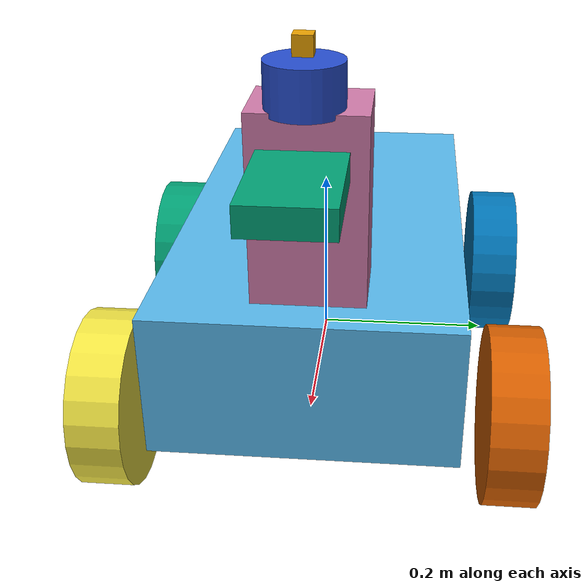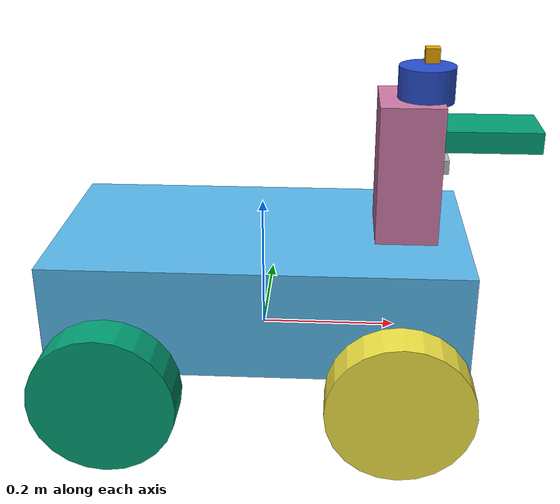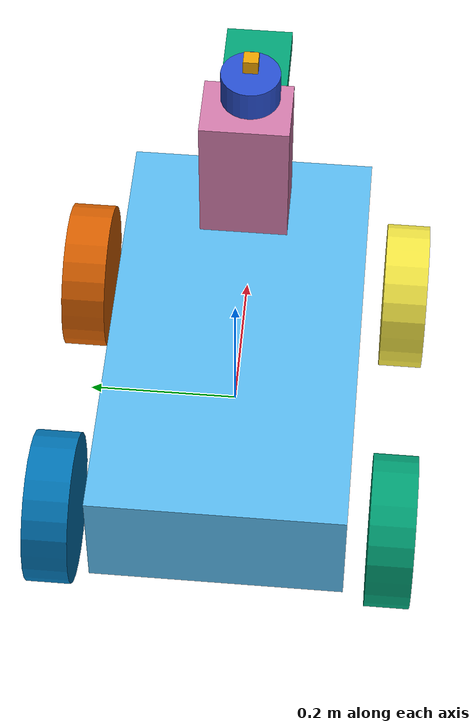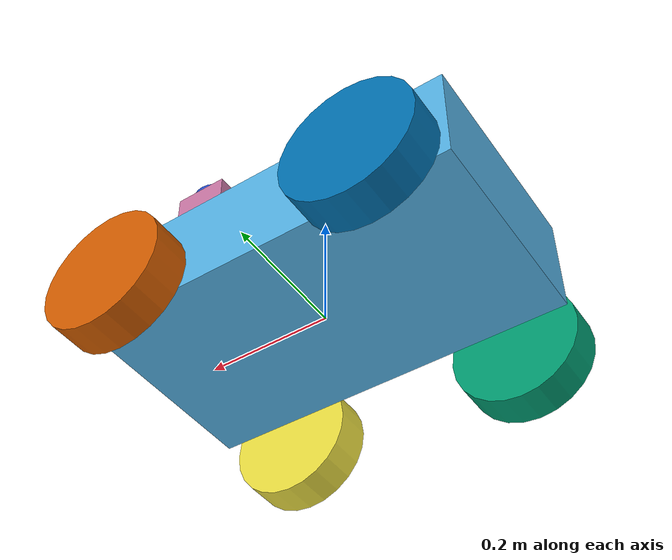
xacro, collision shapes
<?xml version="1.0"?>
<robot name="mickrobot" xmlns:xacro="http://ros.org/wiki/xacro">

  <link name="base_footprint">
    <visual>
      <geometry>
        <sphere radius="0.001" />
      </geometry>
      <material name="invisible">
        <color rgba="0 0 0 0"/>
      </material>
    </visual>
  </link>

<joint name="base_joint" type="fixed">
  <parent link="base_footprint"/>
  <child link="base_link"/>
  <origin xyz="0.0 0.0 0.0" rpy="0 0 0"/>
</joint>

  <!-- base -->
 <link name="base_link">
    <visual>
      <origin xyz="-0.3 -0.1665 0.0" rpy="0 0 0"/>
      <geometry>
        <mesh filename="file://$(find mickrobot_description)/urdf/mesh/mickx4_body.STL" scale="0.001 0.001 0.001"/>
      </geometry>
    </visual>

    <collision>
      <origin xyz="0.0 0.0 0.08" rpy="0 0 0"/>
      <geometry>
        <box size="0.6 0.333 0.16"/>
      </geometry>
    </collision>

   <inertial>
      <mass value="25"/>
      <origin xyz="0.0 0.0 0.08" rpy="0 0 0"/>
      <inertia
        ixx="0.284" ixy="0" ixz="0"
        iyy="0.803" iyz="0"
        izz="0.981"/>
    </inertial>
  </link>

  <!-- right_back_wheel -->
  <link   name="right_back_wheel">
    <visual>
      <origin xyz="0.12 0 -0.11" rpy="0 0 1.57079"/>
      <geometry>
        <mesh filename="file://$(find mickrobot_description)/urdf/mesh/mickx4_wheel_8inches_2.STL" scale="0.001 0.001 0.001"/>
      </geometry>
    </visual>

    <collision>
      <origin xyz="0 0.035 0" rpy="0 1.57079 -1.57079"/>
      <geometry>
        <cylinder radius="0.1016" length="0.06"/>
      </geometry>
    </collision>

    <inertial>
      <mass value="1"/>
      <origin xyz="-0 0.035 0" rpy="0 1.57079 -1.57079"/>
      <inertia ixx="0.00288" ixy="0.0" ixz="0.0" iyy="0.00288" iyz="0.0" izz="0.00516"/>
    </inertial>
  </link>
聽
  <joint   name="right_back_wheel_joint" type="continuous">
    <axis xyz="0 1 0"/>
    <parent   link="base_link"/>
    <child   link="right_back_wheel"/>
    <origin   xyz="-0.2 -0.26 0.0"/>
    <limit effort="100"   velocity="100"/>
  </joint>
  <!-- right_front_wheel -->

  <link   name="right_front_wheel">
    <visual>
      <origin xyz="0.12 0 -0.11" rpy="0 0 1.57079"/>
      <geometry>
        <mesh filename="file://$(find mickrobot_description)/urdf/mesh/mickx4_wheel_8inches_2.STL" scale="0.001 0.001 0.001"/>
      </geometry>
    </visual>

    <collision>
      <origin xyz="-0 0.035 0" rpy="0 1.57079 -1.57079"/>
      <geometry>
        <cylinder radius="0.1016" length="0.06"/>
      </geometry>
    </collision>

    <inertial>
      <mass value="1"/>
      <origin xyz="-0 0.035 0" rpy="0 1.57079 -1.57079"/>
      <inertia ixx="0.00288" ixy="0.0" ixz="0.0" iyy="0.00288" iyz="0.0" izz="0.00516"/>
    </inertial>
  </link>
聽
  <joint   name="right_front_wheel_joint" type="continuous">
    <axis xyz="0 1 0"/>
    <parent   link="base_link"/>
    <child   link="right_front_wheel"/>
    <origin   xyz="0.2 -0.26 0.0"/>
    <limit effort="100"   velocity="100"/>
  </joint>

  <!-- left_back_wheel -->
  <link   name="left_back_wheel">
    <visual>
      <origin xyz="-0.12 0 -0.11" rpy="0 0 -1.57079"/>
      <geometry>
        <mesh filename="file://$(find mickrobot_description)/urdf/mesh/mickx4_wheel_8inches_2.STL" scale="0.001 0.001 0.001"/>
      </geometry>
    </visual>

    <collision>
      <origin xyz="0 -0.035 0" rpy="0 1.57079 -1.57079"/>
      <geometry>
        <cylinder radius="0.1016" length="0.06"/>
      </geometry>
    </collision>

    <inertial>
      <mass value="1"/>
      <origin xyz="0 -0.035 0" rpy="0 1.57079 -1.57079"/>
      <inertia ixx="0.00288" ixy="0.0" ixz="0.0" iyy="0.00288" iyz="0.0" izz="0.00516"/>
    </inertial>
  </link>
聽
  <joint   name="left_back_wheel_joint" type="continuous">
    <axis xyz="0 1 0"/>
    <parent   link="base_link"/>
    <child   link="left_back_wheel"/>
    <origin   xyz="-0.2 0.26 0.0"/>
    <limit effort="100"   velocity="100"/>
  </joint>

  <!-- left_front_wheel -->
  <link   name="left_front_wheel">
    <visual>
      <origin xyz="-0.12 0 -0.11" rpy="0 0 -1.57079"/>
      <geometry>
        <mesh filename="file://$(find mickrobot_description)/urdf/mesh/mickx4_wheel_8inches_2.STL" scale="0.001 0.001 0.001"/>
      </geometry>
    </visual>

    <collision>
      <origin xyz="0 -0.035 0" rpy="0 1.57079 -1.57079"/>
      <geometry>
        <cylinder radius="0.1016" length="0.06"/>
      </geometry>
    </collision>

    <inertial>
      <mass value="1"/>
      <origin xyz="0 -0.035 0" rpy="0 1.57079 -1.57079"/>
      <inertia ixx="0.00288" ixy="0.0" ixz="0.0" iyy="0.00288" iyz="0.0" izz="0.00516"/>
    </inertial>
  </link>
聽
  <joint   name="left_front_wheel_joint" type="continuous">
    <axis xyz="0 1 0"/>
    <parent   link="base_link"/>
    <child   link="left_front_wheel"/>
    <origin   xyz="0.2 0.26 0.0"/>
    <limit effort="100"   velocity="100"/>
  </joint>

  <!-- sensor -->
  <link   name="sensor_link">
    <visual>
      <origin xyz="0 0 0" rpy="0 0 0"/>
      <geometry>
        <mesh filename="file://$(find mickrobot_description)/urdf/mesh/mickx4_sensorkit1.STL" scale="0.001 0.001 0.001"/>
      </geometry>
    </visual>

    <collision>
      <origin xyz="0.12 0.12 0.1" rpy="0 0 0 "/>
      <geometry>
        <box size="0.09 0.12 0.20"/>
      </geometry>
    </collision>

    <inertial>
      <mass value="1"/>
      <origin xyz="0.12 0.12 0.05" rpy="0 0 0"/>
      <inertia ixx="0.00333" ixy="0.0" ixz="0.0" iyy="0.00333" iyz="0.0" izz="0.00240"/>
    </inertial>
  </link>
聽
  <joint   name="sensor_joint" type="fixed">
    <parent   link="base_link"/>
    <child   link="sensor_link"/>
    <origin   xyz="0.09 -0.1165 0.16"/>
  </joint>

  <!-- imu -->
   <link name="imu_link">
    <visual>
    <origin xyz="0 0 0.0" rpy="0 0 0"/>
    <geometry>
          <box size="0.07 0.07 0.02"/>
    </geometry>
  </visual>

  <collision>
    <origin xyz="0.0 0.0 0.0" rpy="0.0 0.0 0.0"/>
    <geometry>
      <box size="0.07 0.07 0.02"/>
    </geometry>
  </collision>

    <inertial>
      <origin xyz="0.0 0.0 0.0" rpy="0.0 0.0 0.0"/>
      <mass value="0.5"/>
      <inertia ixx="3.333e-5" ixy="0.0" ixz="0.0" iyy="3.333e-5" iyz="0.0" izz="3.333e-5"/>
    </inertial>
    </link>

  <joint name="imu_joint" type="fixed">
    <parent link="base_link" />
    <child link="imu_link" />
    <origin xyz="0.23 0.0 0.27" rpy="0.0 0.0 0.0" />
  </joint>

  <!-- gnss -->
  <link name="gnss_link">
    <visual>
      <origin xyz="0 0 0.0" rpy="0 0 0"/>
      <geometry>
        <box size="0.02 0.02 0.02"/>
      </geometry>
    </visual>

    <collision>
      <origin xyz="0.0 0.0 0.0" rpy="0.0 0.0 0.0"/>
      <geometry>
        <box size="0.02 0.02 0.02"/>
      </geometry>
    </collision>

    <inertial>
      <origin xyz="0.0 0.0 0.0" rpy="0.0 0.0 0.0"/>
      <mass value="0.5"/>
      <inertia ixx="3.333e-5" ixy="0.0" ixz="0.0" iyy="3.333e-5" iyz="0.0" izz="3.333e-5"/>
    </inertial>
  </link>

  <joint name="gnss_joint" type="fixed">
    <parent link="base_link" />
    <child link="gnss_link" />
    <origin xyz="0.235 0.0 0.42" rpy="0.0 0.0 0.0" />
  </joint>

  <!-- laser -->
  <link name="laser_link">
    <visual>
      <origin xyz="0 0 0" rpy="0 0 0"/>
      <geometry>
        <cylinder length="0.05" radius="0.04"/>
      </geometry>
    </visual>

    <collision>
      <origin xyz="0 0 0" rpy="0 0 0"/>
      <geometry>
        <cylinder length="0.05" radius="0.04"/>
      </geometry>
    </collision>

    <inertial>
      <mass value="0.1"/>
      <inertia ixx="6.083e-5" ixy="0" ixz="0" iyy="6.083e-5" iyz="0" izz="8.0e-5"/>
    </inertial>
  </link>

  <joint name="laser_joint" type="fixed">
      <parent link="base_link" />
      <child link="laser_link" />
      <origin xyz="0.23 0.0 0.38" />
  </joint>

  <!-- camera -->
 <link name="camera_link">
    <visual>
      <origin xyz="0 0 0" rpy="0 0 0"/>
      <geometry>
        <box size="0.02 0.09 0.03"/>
      </geometry>
    </visual>

  <inertial>
  <mass value="0.1"/>
  <origin xyz="0 0 0" rpy="0 0 0"/>
  <inertia
    ixx="4.167e-5" ixy="0" ixz="0"
    iyy="4.167e-5" iyz="0"
    izz="4.167e-5"
  />
  </inertial>

   <collision>
      <origin xyz="0 0 0" rpy="0 0 0"/>
      <geometry>
        <box size="0.2 0.09 0.03"/>
      </geometry>
    </collision>
  </link>

  <joint name="camera_joint" type="fixed">
    <parent link="base_link"/>
    <child link="camera_link"/>
    <origin xyz="0.29 0.0 0.31" rpy="0 0 0"/>
  </joint>

  <!-- diff_drive_plugin for gz-sim -->

<gazebo reference="left_front_wheel">
  <mu1>1.8</mu1> <!-- 闈欐懇鎿︾郴鏁?-->
  <mu2>4.0</mu2> <!-- 鍔ㄦ懇鎿︾郴鏁?-->
</gazebo>

<gazebo reference="right_front_wheel">
  <mu1>1.8</mu1>
  <mu2>4.0</mu2>
</gazebo>

<gazebo reference="left_back_wheel">
  <mu1>1.8</mu1>
  <mu2>4.0</mu2>
</gazebo>

<gazebo reference="right_back_wheel">
  <mu1>1.8</mu1>
  <mu2>4.0</mu2>
</gazebo>

  <gazebo>
    <plugin filename="gz-sim-diff-drive-system" name="gz::sim::systems::DiffDrive">
      <!-- 宸﹀彸渚ц疆鐨勭粦瀹?-->
      <left_joint>left_front_wheel_joint</left_joint>
      <left_joint>left_back_wheel_joint</left_joint>
      <right_joint>right_front_wheel_joint</right_joint>
      <right_joint>right_back_wheel_joint</right_joint>

      <!-- Kinematics -->
      <wheel_separation>0.40</wheel_separation>
      <wheel_radius>0.1016</wheel_radius>

      <!-- limits -->
      <max_linear_acceleration>5.0</max_linear_acceleration>
      <max_angular_acceleration>5.0</max_angular_acceleration>

      <!-- topic -->
      <topic>cmd_vel</topic>

      <!-- output -->
      <odom_topic>odom</odom_topic>
      <tf_topic>tf</tf_topic>
      <frame_id>odom</frame_id>
      <child_frame_id>base_footprint</child_frame_id>
      <odom_publish_frequency>30</odom_publish_frequency>
    </plugin>

    <!-- Publish joint states -->
    <plugin filename="gz-sim-joint-state-publisher-system" name="gz::sim::systems::JointStatePublisher">
      <topic>joint_states</topic>
    </plugin>
  </gazebo>

  <!-- imu_plugin -->
  <gazebo reference="imu_link">
    <sensor name="imu_sensor" type="imu">
      <always_on>true</always_on>
      <update_rate>30</update_rate>
      <visualize>true</visualize>
      <topic>imu/data</topic>
    </sensor>
  </gazebo>

  <!-- camera_plugin -->
  <gazebo reference="camera_link">
    <sensor name="camera_sensor" type="camera">
      <always_on>true</always_on>
      <update_rate>30</update_rate>
      <visualize>true</visualize>
      <topic>camera/image_raw</topic>
      <camera>
        <horizontal_fov>1.047</horizontal_fov>
        <image>
          <width>640</width>
          <height>480</height>
          <format>R8G8B8</format>
        </image>
        <clip>
          <near>0.1</near>
          <far>100</far>
        </clip>
      </camera>
    </sensor>
  </gazebo>

  <!-- gnss_plugin -->
  <gazebo reference="gnss_link">
    <sensor name="gnss_sensor" type="navsat">
      <always_on>true</always_on>
      <update_rate>5.0</update_rate>
      <topic>gps/fix</topic>
    </sensor>
  </gazebo>

  <!-- laser_plugin -->
  <gazebo reference="laser_link">
    <material>Gazebo/Blue</material>
    <sensor name="lidar" type="gpu_lidar">
        <pose>0 0 0 0 0 0</pose>
        <always_on>true</always_on>
        <visualize>true</visualize>
        <update_rate>10</update_rate>
        <topic>scan</topic>
        <ray>
            <scan>
                <horizontal>
                    <samples>360</samples>
                    <resolution>1</resolution>
                    <min_angle>-3.14159</min_angle>
                    <max_angle>3.14159</max_angle>
                </horizontal>
            </scan>
            <range>
                <min>0.3</min>
                <max>12.0</max>
                <resolution>0.01</resolution>
            </range>
        </ray>
    </sensor>
  </gazebo>

</robot>
